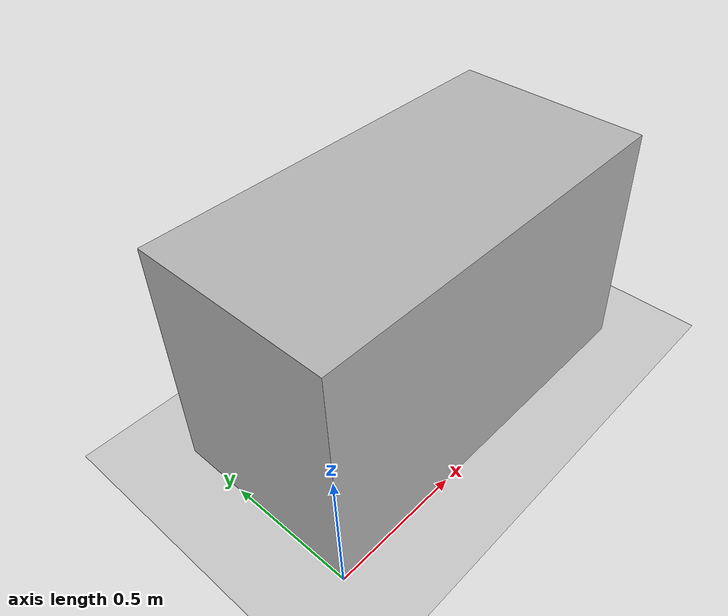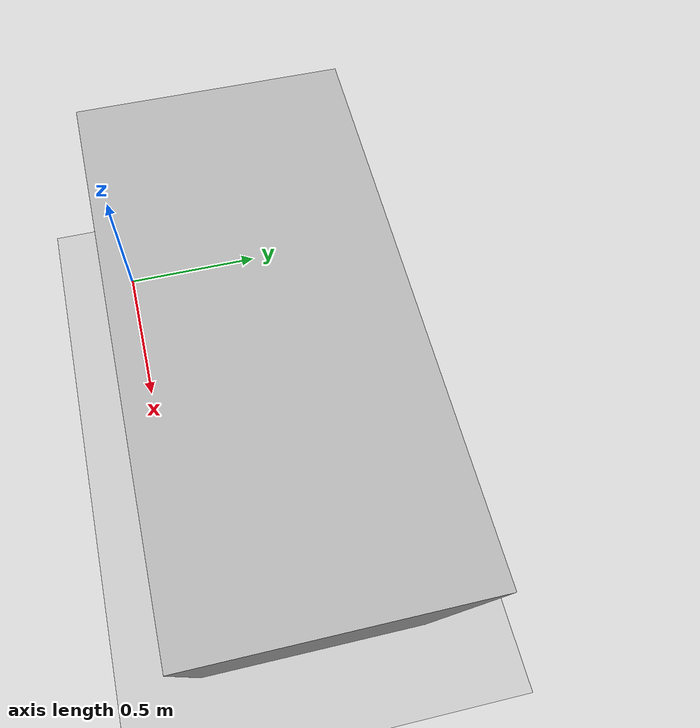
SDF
<?xml version="1.0" ?>
<sdf version="1.5">
<world name="default">
<!-- A global light source -->
<include>
<uri>model://sun</uri>
</include>
<!-- A ground plane -->
<include>
<uri>model://ground_plane</uri>
</include>

<!-- A dummy table -->
<model name="table">
<pose>0.76 0.38 0.46 0 0 0</pose>
<static>true</static>
<link name="table_link">
<inertial>
<mass>10.0</mass>
<inertia>
<ixx>0.83</ixx>       <!-- for a box: ixx = 0.083 * mass * (y*y + z*z) -->
<ixy>0.0</ixy>         <!-- for a box: ixy = 0 -->
<ixz>0.0</ixz>         <!-- for a box: ixz = 0 -->
<iyy>0.83</iyy>       <!-- for a box: iyy = 0.083 * mass * (x*x + z*z) -->
<iyz>0.0</iyz>         <!-- for a box: iyz = 0 -->
<izz>0.83</izz>       <!-- for a box: izz = 0.083 * mass * (x*x + y*y) -->
</inertia>
</inertial>
<collision name="table_collision">
<geometry>
<box>
<size>1.52 0.76 0.92</size>
</box>
</geometry>
</collision>
<visual name="table_visual">
<geometry>
<box>
<size>1.52 0.76 0.92</size>
</box>
</geometry>
</visual>
</link>
</model>

<!--Voxel Grid Plugin-->
<plugin name="voxel_grid_plugin" filename="libvoxel_grid_plugin.so"/>
</world>
</sdf>
